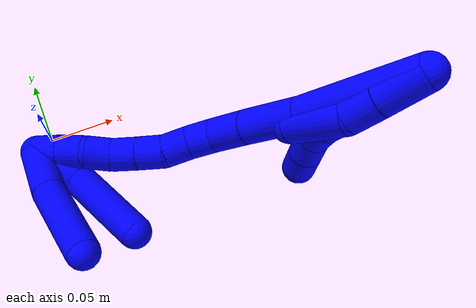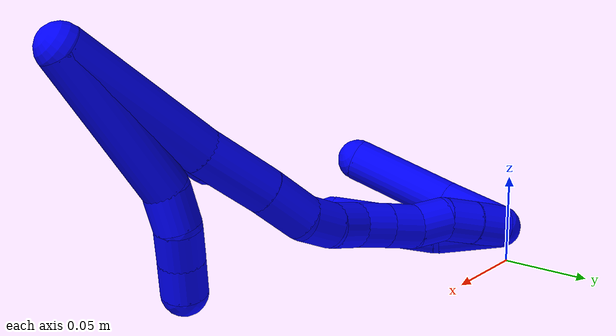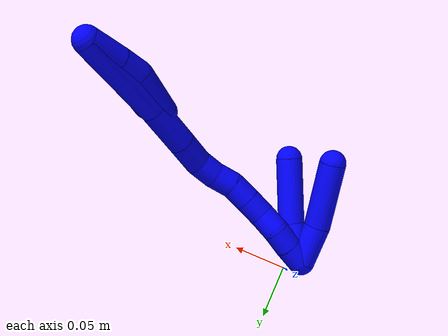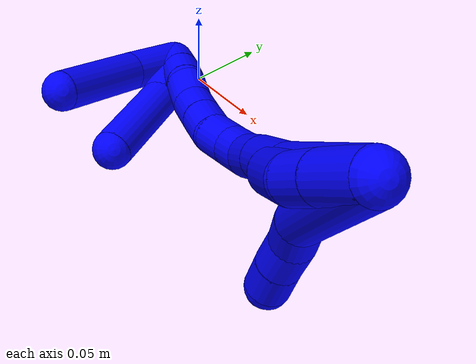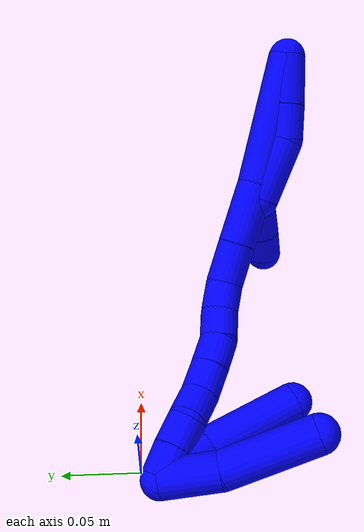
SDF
<sdf version="1.7">
 <world name="default">
  <model name="1">
   <static>0</static>
   <link name="1">
    <collision name="collision-cylinder-e_1_2_8">
     <pose>0.006822 -0.01149 -0.04221 2.87583 0.154698 1.0509</pose>
     <geometry><cylinder><radius>0.0125</radius><length>0.08855</length></cylinder></geometry>
     <surface>
      <friction><ode><mu>1.16</mu><mu2>1.16</mu2><slip1>0</slip1><slip2>0</slip2></ode></friction>
      <contact><ode><kp>1e+06</kp><kd>1</kd><max_vel>0</max_vel><min_depth>0.001</min_depth></ode></contact>
     </surface>
    </collision>
    <visual name="visual-cylinder-e_1_2_8">
     <pose>0.006822 -0.01149 -0.04221 2.87583 0.154698 1.0509</pose>
     <geometry><cylinder><radius>0.0125</radius><length>0.08855</length></cylinder></geometry>
     <material><ambient>0 0 1 1</ambient></material>
    </visual>
    <collision name="collision-cylinder-e_2_8_9">
     <pose>0.017901 -0.027295 -0.093028 2.67685 0.416255 1.45721</pose>
     <geometry><cylinder><radius>0.0125</radius><length>0.021056</length></cylinder></geometry>
     <surface>
      <friction><ode><mu>1.16</mu><mu2>1.16</mu2><slip1>0</slip1><slip2>0</slip2></ode></friction>
      <contact><ode><kp>1e+06</kp><kd>1</kd><max_vel>0</max_vel><min_depth>0.001</min_depth></ode></contact>
     </surface>
    </collision>
    <visual name="visual-cylinder-e_2_8_9">
     <pose>0.017901 -0.027295 -0.093028 2.67685 0.416255 1.45721</pose>
     <geometry><cylinder><radius>0.0125</radius><length>0.021056</length></cylinder></geometry>
     <material><ambient>0 0 1 1</ambient></material>
    </visual>
    <collision name="collision-cylinder-e_3_9_10">
     <pose>0.025056 -0.038016 -0.108989 2.42498 0.288922 0.741077</pose>
     <geometry><cylinder><radius>0.0125</radius><length>0.020348</length></cylinder></geometry>
     <surface>
      <friction><ode><mu>1.16</mu><mu2>1.16</mu2><slip1>0</slip1><slip2>0</slip2></ode></friction>
      <contact><ode><kp>1e+06</kp><kd>1</kd><max_vel>0</max_vel><min_depth>0.001</min_depth></ode></contact>
     </surface>
    </collision>
    <visual name="visual-cylinder-e_3_9_10">
     <pose>0.025056 -0.038016 -0.108989 2.42498 0.288922 0.741077</pose>
     <geometry><cylinder><radius>0.0125</radius><length>0.020348</length></cylinder></geometry>
     <material><ambient>0 0 1 1</ambient></material>
    </visual>
    <collision name="collision-cylinder-e_4_10_6">
     <pose>0.03132 -0.050587 -0.123494 2.43011 0.342374 0.870992</pose>
     <geometry><cylinder><radius>0.0125</radius><length>0.020047</length></cylinder></geometry>
     <surface>
      <friction><ode><mu>1.16</mu><mu2>1.16</mu2><slip1>0</slip1><slip2>0</slip2></ode></friction>
      <contact><ode><kp>1e+06</kp><kd>1</kd><max_vel>0</max_vel><min_depth>0.001</min_depth></ode></contact>
     </surface>
    </collision>
    <visual name="visual-cylinder-e_4_10_6">
     <pose>0.03132 -0.050587 -0.123494 2.43011 0.342374 0.870992</pose>
     <geometry><cylinder><radius>0.0125</radius><length>0.020047</length></cylinder></geometry>
     <material><ambient>0 0 1 1</ambient></material>
    </visual>
    <collision name="collision-cylinder-e_1_2_11">
     <pose>-0.003233 -0.003979 -0.016008 2.89794 -0.193524 -1.34068</pose>
     <geometry><cylinder><radius>0.0125</radius><length>0.033618</length></cylinder></geometry>
     <surface>
      <friction><ode><mu>1.16</mu><mu2>1.16</mu2><slip1>0</slip1><slip2>0</slip2></ode></friction>
      <contact><ode><kp>1e+06</kp><kd>1</kd><max_vel>0</max_vel><min_depth>0.001</min_depth></ode></contact>
     </surface>
    </collision>
    <visual name="visual-cylinder-e_1_2_11">
     <pose>-0.003233 -0.003979 -0.016008 2.89794 -0.193524 -1.34068</pose>
     <geometry><cylinder><radius>0.0125</radius><length>0.033618</length></cylinder></geometry>
     <material><ambient>0 0 1 1</ambient></material>
    </visual>
    <collision name="collision-cylinder-e_2_11_12">
     <pose>-0.008162 -0.01063 -0.043153 2.90622 -0.147044 -1.11426</pose>
     <geometry><cylinder><radius>0.0125</radius><length>0.023157</length></cylinder></geometry>
     <surface>
      <friction><ode><mu>1.16</mu><mu2>1.16</mu2><slip1>0</slip1><slip2>0</slip2></ode></friction>
      <contact><ode><kp>1e+06</kp><kd>1</kd><max_vel>0</max_vel><min_depth>0.001</min_depth></ode></contact>
     </surface>
    </collision>
    <visual name="visual-cylinder-e_2_11_12">
     <pose>-0.008162 -0.01063 -0.043153 2.90622 -0.147044 -1.11426</pose>
     <geometry><cylinder><radius>0.0125</radius><length>0.023157</length></cylinder></geometry>
     <material><ambient>0 0 1 1</ambient></material>
    </visual>
    <collision name="collision-cylinder-e_3_12_5">
     <pose>-0.008778 -0.012282 -0.075853 -3.09439 0.049981 -1.6279</pose>
     <geometry><cylinder><radius>0.0125</radius><length>0.043226</length></cylinder></geometry>
     <surface>
      <friction><ode><mu>1.16</mu><mu2>1.16</mu2><slip1>0</slip1><slip2>0</slip2></ode></friction>
      <contact><ode><kp>1e+06</kp><kd>1</kd><max_vel>0</max_vel><min_depth>0.001</min_depth></ode></contact>
     </surface>
    </collision>
    <visual name="visual-cylinder-e_3_12_5">
     <pose>-0.008778 -0.012282 -0.075853 -3.09439 0.049981 -1.6279</pose>
     <geometry><cylinder><radius>0.0125</radius><length>0.043226</length></cylinder></geometry>
     <material><ambient>0 0 1 1</ambient></material>
    </visual>
    <collision name="collision-cylinder-e_1_2_13">
     <pose>-0.002452 -0.003049 -0.044321 3.0729 -0.055143 -1.35265</pose>
     <geometry><cylinder><radius>0.0125</radius><length>0.088987</length></cylinder></geometry>
     <surface>
      <friction><ode><mu>1.16</mu><mu2>1.16</mu2><slip1>0</slip1><slip2>0</slip2></ode></friction>
      <contact><ode><kp>1e+06</kp><kd>1</kd><max_vel>0</max_vel><min_depth>0.001</min_depth></ode></contact>
     </surface>
    </collision>
    <visual name="visual-cylinder-e_1_2_13">
     <pose>-0.002452 -0.003049 -0.044321 3.0729 -0.055143 -1.35265</pose>
     <geometry><cylinder><radius>0.0125</radius><length>0.088987</length></cylinder></geometry>
     <material><ambient>0 0 1 1</ambient></material>
    </visual>
    <collision name="collision-cylinder-e_2_13_14">
     <pose>-0.006207 -0.005754 -0.109925 -3.12541 -0.061134 2.62403</pose>
     <geometry><cylinder><radius>0.0125</radius><length>0.042651</length></cylinder></geometry>
     <surface>
      <friction><ode><mu>1.16</mu><mu2>1.16</mu2><slip1>0</slip1><slip2>0</slip2></ode></friction>
      <contact><ode><kp>1e+06</kp><kd>1</kd><max_vel>0</max_vel><min_depth>0.001</min_depth></ode></contact>
     </surface>
    </collision>
    <visual name="visual-cylinder-e_2_13_14">
     <pose>-0.006207 -0.005754 -0.109925 -3.12541 -0.061134 2.62403</pose>
     <geometry><cylinder><radius>0.0125</radius><length>0.042651</length></cylinder></geometry>
     <material><ambient>0 0 1 1</ambient></material>
    </visual>
    <collision name="collision-cylinder-e_3_14_15">
     <pose>-0.007853 -0.005604 -0.14532 3.12783 -0.02427 -2.11007</pose>
     <geometry><cylinder><radius>0.0125</radius><length>0.028234</length></cylinder></geometry>
     <surface>
      <friction><ode><mu>1.16</mu><mu2>1.16</mu2><slip1>0</slip1><slip2>0</slip2></ode></friction>
      <contact><ode><kp>1e+06</kp><kd>1</kd><max_vel>0</max_vel><min_depth>0.001</min_depth></ode></contact>
     </surface>
    </collision>
    <visual name="visual-cylinder-e_3_14_15">
     <pose>-0.007853 -0.005604 -0.14532 3.12783 -0.02427 -2.11007</pose>
     <geometry><cylinder><radius>0.0125</radius><length>0.028234</length></cylinder></geometry>
     <material><ambient>0 0 1 1</ambient></material>
    </visual>
    <collision name="collision-cylinder-e_4_15_16">
     <pose>-0.011595 -0.005449 -0.168864 -3.10458 -0.345663 2.93034</pose>
     <geometry><cylinder><radius>0.0125</radius><length>0.020065</length></cylinder></geometry>
     <surface>
      <friction><ode><mu>1.16</mu><mu2>1.16</mu2><slip1>0</slip1><slip2>0</slip2></ode></friction>
      <contact><ode><kp>1e+06</kp><kd>1</kd><max_vel>0</max_vel><min_depth>0.001</min_depth></ode></contact>
     </surface>
    </collision>
    <visual name="visual-cylinder-e_4_15_16">
     <pose>-0.011595 -0.005449 -0.168864 -3.10458 -0.345663 2.93034</pose>
     <geometry><cylinder><radius>0.0125</radius><length>0.020065</length></cylinder></geometry>
     <material><ambient>0 0 1 1</ambient></material>
    </visual>
    <collision name="collision-cylinder-e_5_16_17">
     <pose>-0.020452 -0.004817 -0.186705 -3.10799 -0.575501 3.02816</pose>
     <geometry><cylinder><radius>0.0125</radius><length>0.020059</length></cylinder></geometry>
     <surface>
      <friction><ode><mu>1.16</mu><mu2>1.16</mu2><slip1>0</slip1><slip2>0</slip2></ode></friction>
      <contact><ode><kp>1e+06</kp><kd>1</kd><max_vel>0</max_vel><min_depth>0.001</min_depth></ode></contact>
     </surface>
    </collision>
    <visual name="visual-cylinder-e_5_16_17">
     <pose>-0.020452 -0.004817 -0.186705 -3.10799 -0.575501 3.02816</pose>
     <geometry><cylinder><radius>0.0125</radius><length>0.020059</length></cylinder></geometry>
     <material><ambient>0 0 1 1</ambient></material>
    </visual>
    <collision name="collision-cylinder-e_6_17_18">
     <pose>-0.030076 -0.001883 -0.203812 -2.84572 -0.429543 1.9429</pose>
     <geometry><cylinder><radius>0.0125</radius><length>0.020002</length></cylinder></geometry>
     <surface>
      <friction><ode><mu>1.16</mu><mu2>1.16</mu2><slip1>0</slip1><slip2>0</slip2></ode></friction>
      <contact><ode><kp>1e+06</kp><kd>1</kd><max_vel>0</max_vel><min_depth>0.001</min_depth></ode></contact>
     </surface>
    </collision>
    <visual name="visual-cylinder-e_6_17_18">
     <pose>-0.030076 -0.001883 -0.203812 -2.84572 -0.429543 1.9429</pose>
     <geometry><cylinder><radius>0.0125</radius><length>0.020002</length></cylinder></geometry>
     <material><ambient>0 0 1 1</ambient></material>
    </visual>
    <collision name="collision-cylinder-e_7_18_19">
     <pose>-0.038182 0.003543 -0.221272 -2.83489 -0.405113 1.85126</pose>
     <geometry><cylinder><radius>0.0125</radius><length>0.020001</length></cylinder></geometry>
     <surface>
      <friction><ode><mu>1.16</mu><mu2>1.16</mu2><slip1>0</slip1><slip2>0</slip2></ode></friction>
      <contact><ode><kp>1e+06</kp><kd>1</kd><max_vel>0</max_vel><min_depth>0.001</min_depth></ode></contact>
     </surface>
    </collision>
    <visual name="visual-cylinder-e_7_18_19">
     <pose>-0.038182 0.003543 -0.221272 -2.83489 -0.405113 1.85126</pose>
     <geometry><cylinder><radius>0.0125</radius><length>0.020001</length></cylinder></geometry>
     <material><ambient>0 0 1 1</ambient></material>
    </visual>
    <collision name="collision-cylinder-e_8_19_20">
     <pose>-0.04726 0.011035 -0.237201 -2.55952 -0.539426 1.49066</pose>
     <geometry><cylinder><radius>0.0125</radius><length>0.02</length></cylinder></geometry>
     <surface>
      <friction><ode><mu>1.16</mu><mu2>1.16</mu2><slip1>0</slip1><slip2>0</slip2></ode></friction>
      <contact><ode><kp>1e+06</kp><kd>1</kd><max_vel>0</max_vel><min_depth>0.001</min_depth></ode></contact>
     </surface>
    </collision>
    <visual name="visual-cylinder-e_8_19_20">
     <pose>-0.04726 0.011035 -0.237201 -2.55952 -0.539426 1.49066</pose>
     <geometry><cylinder><radius>0.0125</radius><length>0.02</length></cylinder></geometry>
     <material><ambient>0 0 1 1</ambient></material>
    </visual>
    <collision name="collision-cylinder-e_9_20_21">
     <pose>-0.055245 0.019059 -0.253365 -2.78933 -0.288781 1.37002</pose>
     <geometry><cylinder><radius>0.0125</radius><length>0.02</length></cylinder></geometry>
     <surface>
      <friction><ode><mu>1.16</mu><mu2>1.16</mu2><slip1>0</slip1><slip2>0</slip2></ode></friction>
      <contact><ode><kp>1e+06</kp><kd>1</kd><max_vel>0</max_vel><min_depth>0.001</min_depth></ode></contact>
     </surface>
    </collision>
    <visual name="visual-cylinder-e_9_20_21">
     <pose>-0.055245 0.019059 -0.253365 -2.78933 -0.288781 1.37002</pose>
     <geometry><cylinder><radius>0.0125</radius><length>0.02</length></cylinder></geometry>
     <material><ambient>0 0 1 1</ambient></material>
    </visual>
    <collision name="collision-cylinder-e_10_21_1">
     <pose>-0.061211 0.025095 -0.271465 -2.8504 -0.317074 1.65716</pose>
     <geometry><cylinder><radius>0.0125</radius><length>0.020001</length></cylinder></geometry>
     <surface>
      <friction><ode><mu>1.16</mu><mu2>1.16</mu2><slip1>0</slip1><slip2>0</slip2></ode></friction>
      <contact><ode><kp>1e+06</kp><kd>1</kd><max_vel>0</max_vel><min_depth>0.001</min_depth></ode></contact>
     </surface>
    </collision>
    <visual name="visual-cylinder-e_10_21_1">
     <pose>-0.061211 0.025095 -0.271465 -2.8504 -0.317074 1.65716</pose>
     <geometry><cylinder><radius>0.0125</radius><length>0.020001</length></cylinder></geometry>
     <material><ambient>0 0 1 1</ambient></material>
    </visual>
    <collision name="collision-cylinder-e_1_1_22">
     <pose>-0.061465 0.013513 -0.268964 0.889488 0.15423 0.073617</pose>
     <geometry><cylinder><radius>0.0125</radius><length>0.037286</length></cylinder></geometry>
     <surface>
      <friction><ode><mu>1.16</mu><mu2>1.16</mu2><slip1>0</slip1><slip2>0</slip2></ode></friction>
      <contact><ode><kp>1e+06</kp><kd>1</kd><max_vel>0</max_vel><min_depth>0.001</min_depth></ode></contact>
     </surface>
    </collision>
    <visual name="visual-cylinder-e_1_1_22">
     <pose>-0.061465 0.013513 -0.268964 0.889488 0.15423 0.073617</pose>
     <geometry><cylinder><radius>0.0125</radius><length>0.037286</length></cylinder></geometry>
     <material><ambient>0 0 1 1</ambient></material>
    </visual>
    <collision name="collision-cylinder-e_2_22_4">
     <pose>-0.062356 -0.024084 -0.236702 0.845137 -0.120034 -0.054026</pose>
     <geometry><cylinder><radius>0.0125</radius><length>0.062714</length></cylinder></geometry>
     <surface>
      <friction><ode><mu>1.16</mu><mu2>1.16</mu2><slip1>0</slip1><slip2>0</slip2></ode></friction>
      <contact><ode><kp>1e+06</kp><kd>1</kd><max_vel>0</max_vel><min_depth>0.001</min_depth></ode></contact>
     </surface>
    </collision>
    <visual name="visual-cylinder-e_2_22_4">
     <pose>-0.062356 -0.024084 -0.236702 0.845137 -0.120034 -0.054026</pose>
     <geometry><cylinder><radius>0.0125</radius><length>0.062714</length></cylinder></geometry>
     <material><ambient>0 0 1 1</ambient></material>
    </visual>
    <collision name="collision-cylinder-e_1_1_23">
     <pose>-0.074325 0.01459 -0.271431 0.966543 -0.556202 -0.297434</pose>
     <geometry><cylinder><radius>0.0125</radius><length>0.037868</length></cylinder></geometry>
     <surface>
      <friction><ode><mu>1.16</mu><mu2>1.16</mu2><slip1>0</slip1><slip2>0</slip2></ode></friction>
      <contact><ode><kp>1e+06</kp><kd>1</kd><max_vel>0</max_vel><min_depth>0.001</min_depth></ode></contact>
     </surface>
    </collision>
    <visual name="visual-cylinder-e_1_1_23">
     <pose>-0.074325 0.01459 -0.271431 0.966543 -0.556202 -0.297434</pose>
     <geometry><cylinder><radius>0.0125</radius><length>0.037868</length></cylinder></geometry>
     <material><ambient>0 0 1 1</ambient></material>
    </visual>
    <collision name="collision-cylinder-e_2_23_3">
     <pose>-0.097784 -0.01798 -0.242048 0.762435 -0.448224 -0.182223</pose>
     <geometry><cylinder><radius>0.0125</radius><length>0.062132</length></cylinder></geometry>
     <surface>
      <friction><ode><mu>1.16</mu><mu2>1.16</mu2><slip1>0</slip1><slip2>0</slip2></ode></friction>
      <contact><ode><kp>1e+06</kp><kd>1</kd><max_vel>0</max_vel><min_depth>0.001</min_depth></ode></contact>
     </surface>
    </collision>
    <visual name="visual-cylinder-e_2_23_3">
     <pose>-0.097784 -0.01798 -0.242048 0.762435 -0.448224 -0.182223</pose>
     <geometry><cylinder><radius>0.0125</radius><length>0.062132</length></cylinder></geometry>
     <material><ambient>0 0 1 1</ambient></material>
    </visual>
    <collision name="collision-sphere-3">
     <pose>-0.111247 -0.037317 -0.221802 0 -0 0</pose>
     <geometry><sphere><radius>0.0125</radius></sphere></geometry>
     <surface>
      <friction><ode><mu>1.16</mu><mu2>1.16</mu2><slip1>0</slip1><slip2>0</slip2></ode></friction>
      <contact><ode><kp>1e+06</kp><kd>1</kd><max_vel>0</max_vel><min_depth>0.001</min_depth></ode></contact>
     </surface>
    </collision>
    <visual name="visual-sphere-3">
     <pose>-0.111247 -0.037317 -0.221802 0 -0 0</pose>
     <geometry><sphere><radius>0.0125</radius></sphere></geometry>
     <material><ambient>0 0 1 1</ambient></material>
    </visual>
    <collision name="collision-sphere-23">
     <pose>-0.084321 0.001357 -0.262295 0 -0 0</pose>
     <geometry><sphere><radius>0.0125</radius></sphere></geometry>
     <surface>
      <friction><ode><mu>1.16</mu><mu2>1.16</mu2><slip1>0</slip1><slip2>0</slip2></ode></friction>
      <contact><ode><kp>1e+06</kp><kd>1</kd><max_vel>0</max_vel><min_depth>0.001</min_depth></ode></contact>
     </surface>
    </collision>
    <visual name="visual-sphere-23">
     <pose>-0.084321 0.001357 -0.262295 0 -0 0</pose>
     <geometry><sphere><radius>0.0125</radius></sphere></geometry>
     <material><ambient>0 0 1 1</ambient></material>
    </visual>
    <collision name="collision-sphere-4">
     <pose>-0.06611 -0.047372 -0.216043 0 -0 0</pose>
     <geometry><sphere><radius>0.0125</radius></sphere></geometry>
     <surface>
      <friction><ode><mu>1.16</mu><mu2>1.16</mu2><slip1>0</slip1><slip2>0</slip2></ode></friction>
      <contact><ode><kp>1e+06</kp><kd>1</kd><max_vel>0</max_vel><min_depth>0.001</min_depth></ode></contact>
     </surface>
    </collision>
    <visual name="visual-sphere-4">
     <pose>-0.06611 -0.047372 -0.216043 0 -0 0</pose>
     <geometry><sphere><radius>0.0125</radius></sphere></geometry>
     <material><ambient>0 0 1 1</ambient></material>
    </visual>
    <collision name="collision-sphere-22">
     <pose>-0.058601 -0.000796 -0.257362 0 -0 0</pose>
     <geometry><sphere><radius>0.0125</radius></sphere></geometry>
     <surface>
      <friction><ode><mu>1.16</mu><mu2>1.16</mu2><slip1>0</slip1><slip2>0</slip2></ode></friction>
      <contact><ode><kp>1e+06</kp><kd>1</kd><max_vel>0</max_vel><min_depth>0.001</min_depth></ode></contact>
     </surface>
    </collision>
    <visual name="visual-sphere-22">
     <pose>-0.058601 -0.000796 -0.257362 0 -0 0</pose>
     <geometry><sphere><radius>0.0125</radius></sphere></geometry>
     <material><ambient>0 0 1 1</ambient></material>
    </visual>
    <collision name="collision-sphere-1">
     <pose>-0.064329 0.027822 -0.280566 0 -0 0</pose>
     <geometry><sphere><radius>0.0125</radius></sphere></geometry>
     <surface>
      <friction><ode><mu>1.16</mu><mu2>1.16</mu2><slip1>0</slip1><slip2>0</slip2></ode></friction>
      <contact><ode><kp>1e+06</kp><kd>1</kd><max_vel>0</max_vel><min_depth>0.001</min_depth></ode></contact>
     </surface>
    </collision>
    <visual name="visual-sphere-1">
     <pose>-0.064329 0.027822 -0.280566 0 -0 0</pose>
     <geometry><sphere><radius>0.0125</radius></sphere></geometry>
     <material><ambient>0 0 1 1</ambient></material>
    </visual>
    <collision name="collision-sphere-21">
     <pose>-0.058093 0.022367 -0.262363 0 -0 0</pose>
     <geometry><sphere><radius>0.0125</radius></sphere></geometry>
     <surface>
      <friction><ode><mu>1.16</mu><mu2>1.16</mu2><slip1>0</slip1><slip2>0</slip2></ode></friction>
      <contact><ode><kp>1e+06</kp><kd>1</kd><max_vel>0</max_vel><min_depth>0.001</min_depth></ode></contact>
     </surface>
    </collision>
    <visual name="visual-sphere-21">
     <pose>-0.058093 0.022367 -0.262363 0 -0 0</pose>
     <geometry><sphere><radius>0.0125</radius></sphere></geometry>
     <material><ambient>0 0 1 1</ambient></material>
    </visual>
    <collision name="collision-sphere-11">
     <pose>-0.006465 -0.007959 -0.032016 0 -0 0</pose>
     <geometry><sphere><radius>0.0125</radius></sphere></geometry>
     <surface>
      <friction><ode><mu>1.16</mu><mu2>1.16</mu2><slip1>0</slip1><slip2>0</slip2></ode></friction>
      <contact><ode><kp>1e+06</kp><kd>1</kd><max_vel>0</max_vel><min_depth>0.001</min_depth></ode></contact>
     </surface>
    </collision>
    <visual name="visual-sphere-11">
     <pose>-0.006465 -0.007959 -0.032016 0 -0 0</pose>
     <geometry><sphere><radius>0.0125</radius></sphere></geometry>
     <material><ambient>0 0 1 1</ambient></material>
    </visual>
    <collision name="collision-sphere-6">
     <pose>0.034685 -0.056752 -0.130645 0 -0 0</pose>
     <geometry><sphere><radius>0.0125</radius></sphere></geometry>
     <surface>
      <friction><ode><mu>1.16</mu><mu2>1.16</mu2><slip1>0</slip1><slip2>0</slip2></ode></friction>
      <contact><ode><kp>1e+06</kp><kd>1</kd><max_vel>0</max_vel><min_depth>0.001</min_depth></ode></contact>
     </surface>
    </collision>
    <visual name="visual-sphere-6">
     <pose>0.034685 -0.056752 -0.130645 0 -0 0</pose>
     <geometry><sphere><radius>0.0125</radius></sphere></geometry>
     <material><ambient>0 0 1 1</ambient></material>
    </visual>
    <collision name="collision-sphere-10">
     <pose>0.027955 -0.044422 -0.116343 0 -0 0</pose>
     <geometry><sphere><radius>0.0125</radius></sphere></geometry>
     <surface>
      <friction><ode><mu>1.16</mu><mu2>1.16</mu2><slip1>0</slip1><slip2>0</slip2></ode></friction>
      <contact><ode><kp>1e+06</kp><kd>1</kd><max_vel>0</max_vel><min_depth>0.001</min_depth></ode></contact>
     </surface>
    </collision>
    <visual name="visual-sphere-10">
     <pose>0.027955 -0.044422 -0.116343 0 -0 0</pose>
     <geometry><sphere><radius>0.0125</radius></sphere></geometry>
     <material><ambient>0 0 1 1</ambient></material>
    </visual>
    <collision name="collision-sphere-9">
     <pose>0.022158 -0.031611 -0.101636 0 -0 0</pose>
     <geometry><sphere><radius>0.0125</radius></sphere></geometry>
     <surface>
      <friction><ode><mu>1.16</mu><mu2>1.16</mu2><slip1>0</slip1><slip2>0</slip2></ode></friction>
      <contact><ode><kp>1e+06</kp><kd>1</kd><max_vel>0</max_vel><min_depth>0.001</min_depth></ode></contact>
     </surface>
    </collision>
    <visual name="visual-sphere-9">
     <pose>0.022158 -0.031611 -0.101636 0 -0 0</pose>
     <geometry><sphere><radius>0.0125</radius></sphere></geometry>
     <material><ambient>0 0 1 1</ambient></material>
    </visual>
    <collision name="collision-sphere-2">
     <geometry><sphere><radius>0.0125</radius></sphere></geometry>
     <surface>
      <friction><ode><mu>1.16</mu><mu2>1.16</mu2><slip1>0</slip1><slip2>0</slip2></ode></friction>
      <contact><ode><kp>1e+06</kp><kd>1</kd><max_vel>0</max_vel><min_depth>0.001</min_depth></ode></contact>
     </surface>
    </collision>
    <visual name="visual-sphere-2">
     <geometry><sphere><radius>0.0125</radius></sphere></geometry>
     <material><ambient>0 0 1 1</ambient></material>
    </visual>
    <collision name="collision-sphere-19">
     <pose>-0.042124 0.006318 -0.230034 0 -0 0</pose>
     <geometry><sphere><radius>0.0125</radius></sphere></geometry>
     <surface>
      <friction><ode><mu>1.16</mu><mu2>1.16</mu2><slip1>0</slip1><slip2>0</slip2></ode></friction>
      <contact><ode><kp>1e+06</kp><kd>1</kd><max_vel>0</max_vel><min_depth>0.001</min_depth></ode></contact>
     </surface>
    </collision>
    <visual name="visual-sphere-19">
     <pose>-0.042124 0.006318 -0.230034 0 -0 0</pose>
     <geometry><sphere><radius>0.0125</radius></sphere></geometry>
     <material><ambient>0 0 1 1</ambient></material>
    </visual>
    <collision name="collision-sphere-8">
     <pose>0.013644 -0.022979 -0.084421 0 -0 0</pose>
     <geometry><sphere><radius>0.0125</radius></sphere></geometry>
     <surface>
      <friction><ode><mu>1.16</mu><mu2>1.16</mu2><slip1>0</slip1><slip2>0</slip2></ode></friction>
      <contact><ode><kp>1e+06</kp><kd>1</kd><max_vel>0</max_vel><min_depth>0.001</min_depth></ode></contact>
     </surface>
    </collision>
    <visual name="visual-sphere-8">
     <pose>0.013644 -0.022979 -0.084421 0 -0 0</pose>
     <geometry><sphere><radius>0.0125</radius></sphere></geometry>
     <material><ambient>0 0 1 1</ambient></material>
    </visual>
    <collision name="collision-sphere-12">
     <pose>-0.009858 -0.013301 -0.054291 0 -0 0</pose>
     <geometry><sphere><radius>0.0125</radius></sphere></geometry>
     <surface>
      <friction><ode><mu>1.16</mu><mu2>1.16</mu2><slip1>0</slip1><slip2>0</slip2></ode></friction>
      <contact><ode><kp>1e+06</kp><kd>1</kd><max_vel>0</max_vel><min_depth>0.001</min_depth></ode></contact>
     </surface>
    </collision>
    <visual name="visual-sphere-12">
     <pose>-0.009858 -0.013301 -0.054291 0 -0 0</pose>
     <geometry><sphere><radius>0.0125</radius></sphere></geometry>
     <material><ambient>0 0 1 1</ambient></material>
    </visual>
    <collision name="collision-sphere-5">
     <pose>-0.007699 -0.011264 -0.097414 0 -0 0</pose>
     <geometry><sphere><radius>0.0125</radius></sphere></geometry>
     <surface>
      <friction><ode><mu>1.16</mu><mu2>1.16</mu2><slip1>0</slip1><slip2>0</slip2></ode></friction>
      <contact><ode><kp>1e+06</kp><kd>1</kd><max_vel>0</max_vel><min_depth>0.001</min_depth></ode></contact>
     </surface>
    </collision>
    <visual name="visual-sphere-5">
     <pose>-0.007699 -0.011264 -0.097414 0 -0 0</pose>
     <geometry><sphere><radius>0.0125</radius></sphere></geometry>
     <material><ambient>0 0 1 1</ambient></material>
    </visual>
    <collision name="collision-sphere-13">
     <pose>-0.004905 -0.006099 -0.088642 0 -0 0</pose>
     <geometry><sphere><radius>0.0125</radius></sphere></geometry>
     <surface>
      <friction><ode><mu>1.16</mu><mu2>1.16</mu2><slip1>0</slip1><slip2>0</slip2></ode></friction>
      <contact><ode><kp>1e+06</kp><kd>1</kd><max_vel>0</max_vel><min_depth>0.001</min_depth></ode></contact>
     </surface>
    </collision>
    <visual name="visual-sphere-13">
     <pose>-0.004905 -0.006099 -0.088642 0 -0 0</pose>
     <geometry><sphere><radius>0.0125</radius></sphere></geometry>
     <material><ambient>0 0 1 1</ambient></material>
    </visual>
    <collision name="collision-sphere-14">
     <pose>-0.00751 -0.00541 -0.131208 0 -0 0</pose>
     <geometry><sphere><radius>0.0125</radius></sphere></geometry>
     <surface>
      <friction><ode><mu>1.16</mu><mu2>1.16</mu2><slip1>0</slip1><slip2>0</slip2></ode></friction>
      <contact><ode><kp>1e+06</kp><kd>1</kd><max_vel>0</max_vel><min_depth>0.001</min_depth></ode></contact>
     </surface>
    </collision>
    <visual name="visual-sphere-14">
     <pose>-0.00751 -0.00541 -0.131208 0 -0 0</pose>
     <geometry><sphere><radius>0.0125</radius></sphere></geometry>
     <material><ambient>0 0 1 1</ambient></material>
    </visual>
    <collision name="collision-sphere-15">
     <pose>-0.008196 -0.005798 -0.159431 0 -0 0</pose>
     <geometry><sphere><radius>0.0125</radius></sphere></geometry>
     <surface>
      <friction><ode><mu>1.16</mu><mu2>1.16</mu2><slip1>0</slip1><slip2>0</slip2></ode></friction>
      <contact><ode><kp>1e+06</kp><kd>1</kd><max_vel>0</max_vel><min_depth>0.001</min_depth></ode></contact>
     </surface>
    </collision>
    <visual name="visual-sphere-15">
     <pose>-0.008196 -0.005798 -0.159431 0 -0 0</pose>
     <geometry><sphere><radius>0.0125</radius></sphere></geometry>
     <material><ambient>0 0 1 1</ambient></material>
    </visual>
    <collision name="collision-sphere-16">
     <pose>-0.014994 -0.0051 -0.178296 0 -0 0</pose>
     <geometry><sphere><radius>0.0125</radius></sphere></geometry>
     <surface>
      <friction><ode><mu>1.16</mu><mu2>1.16</mu2><slip1>0</slip1><slip2>0</slip2></ode></friction>
      <contact><ode><kp>1e+06</kp><kd>1</kd><max_vel>0</max_vel><min_depth>0.001</min_depth></ode></contact>
     </surface>
    </collision>
    <visual name="visual-sphere-16">
     <pose>-0.014994 -0.0051 -0.178296 0 -0 0</pose>
     <geometry><sphere><radius>0.0125</radius></sphere></geometry>
     <material><ambient>0 0 1 1</ambient></material>
    </visual>
    <collision name="collision-sphere-17">
     <pose>-0.025911 -0.004534 -0.195114 0 -0 0</pose>
     <geometry><sphere><radius>0.0125</radius></sphere></geometry>
     <surface>
      <friction><ode><mu>1.16</mu><mu2>1.16</mu2><slip1>0</slip1><slip2>0</slip2></ode></friction>
      <contact><ode><kp>1e+06</kp><kd>1</kd><max_vel>0</max_vel><min_depth>0.001</min_depth></ode></contact>
     </surface>
    </collision>
    <visual name="visual-sphere-17">
     <pose>-0.025911 -0.004534 -0.195114 0 -0 0</pose>
     <geometry><sphere><radius>0.0125</radius></sphere></geometry>
     <material><ambient>0 0 1 1</ambient></material>
    </visual>
    <collision name="collision-sphere-18">
     <pose>-0.034241 0.000768 -0.212509 0 -0 0</pose>
     <geometry><sphere><radius>0.0125</radius></sphere></geometry>
     <surface>
      <friction><ode><mu>1.16</mu><mu2>1.16</mu2><slip1>0</slip1><slip2>0</slip2></ode></friction>
      <contact><ode><kp>1e+06</kp><kd>1</kd><max_vel>0</max_vel><min_depth>0.001</min_depth></ode></contact>
     </surface>
    </collision>
    <visual name="visual-sphere-18">
     <pose>-0.034241 0.000768 -0.212509 0 -0 0</pose>
     <geometry><sphere><radius>0.0125</radius></sphere></geometry>
     <material><ambient>0 0 1 1</ambient></material>
    </visual>
    <collision name="collision-sphere-20">
     <pose>-0.052397 0.015752 -0.244368 0 -0 0</pose>
     <geometry><sphere><radius>0.0125</radius></sphere></geometry>
     <surface>
      <friction><ode><mu>1.16</mu><mu2>1.16</mu2><slip1>0</slip1><slip2>0</slip2></ode></friction>
      <contact><ode><kp>1e+06</kp><kd>1</kd><max_vel>0</max_vel><min_depth>0.001</min_depth></ode></contact>
     </surface>
    </collision>
    <visual name="visual-sphere-20">
     <pose>-0.052397 0.015752 -0.244368 0 -0 0</pose>
     <geometry><sphere><radius>0.0125</radius></sphere></geometry>
     <material><ambient>0 0 1 1</ambient></material>
    </visual>
    <inertial>
     <pose>-0.026184 -0.007474 -0.145345 0 -0 0</pose>
     <mass>0.75</mass>
     <inertia><ixx>6.5e-05</ixx><ixy>0</ixy><ixz>0</ixz><iyy>-2e-05</iyy><iyz>0</iyz><izz>4.3e-05</izz></inertia>
    </inertial>
   </link>
   <pose>0.229037 -0.105976 0.144697 0.702274 0.576428 0.527384</pose>
  </model>
 </world>
</sdf>
